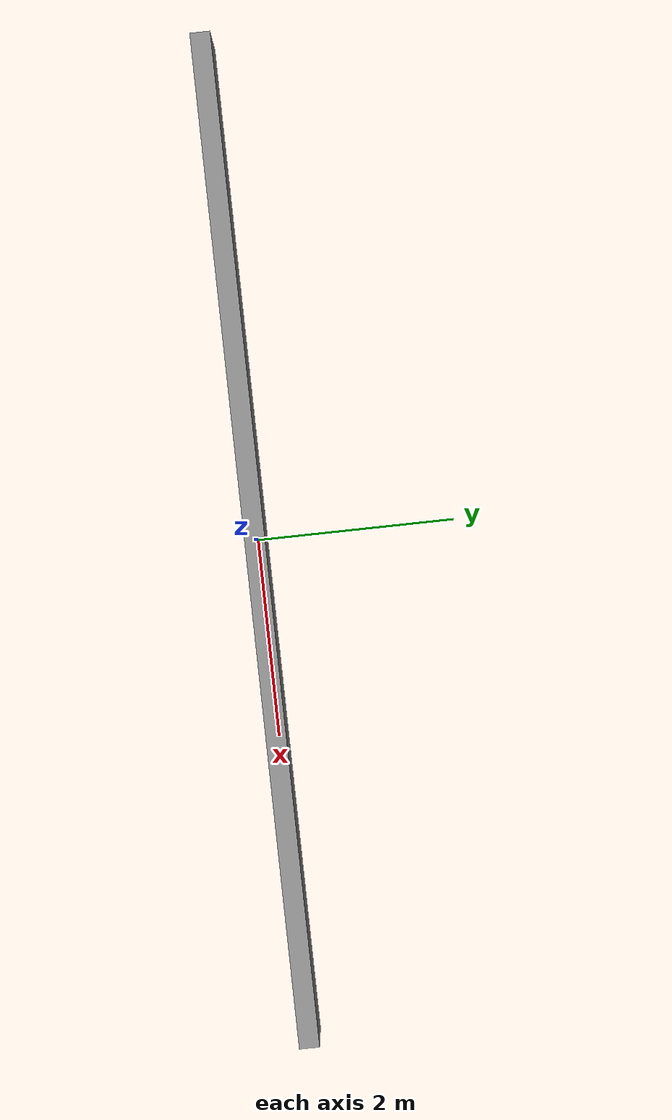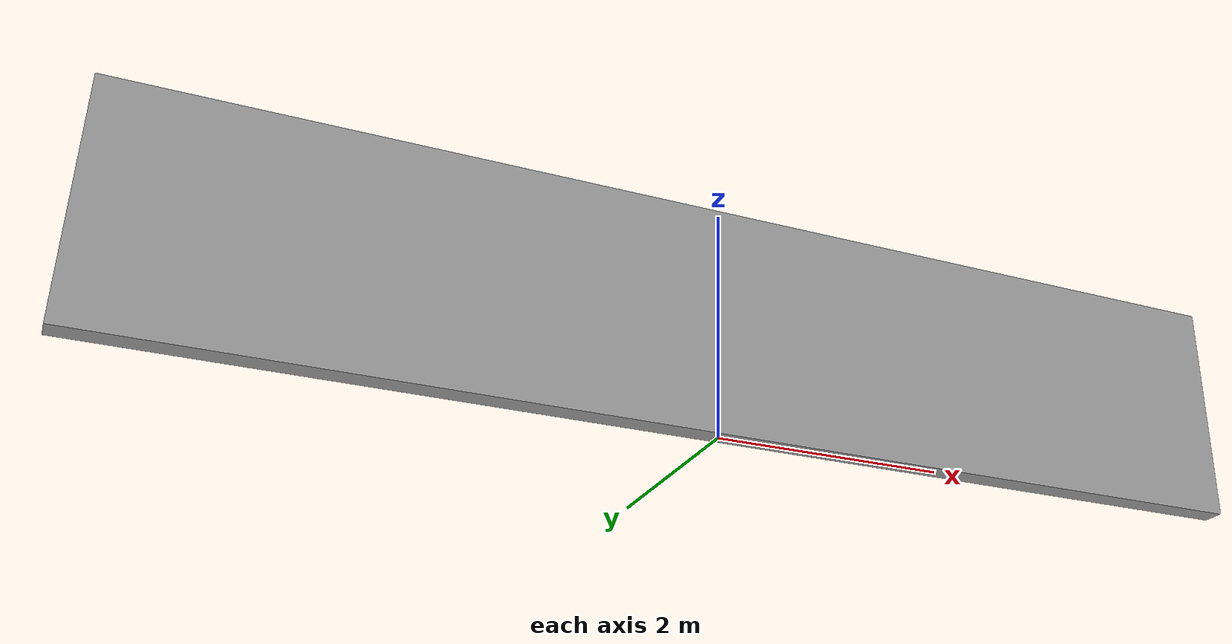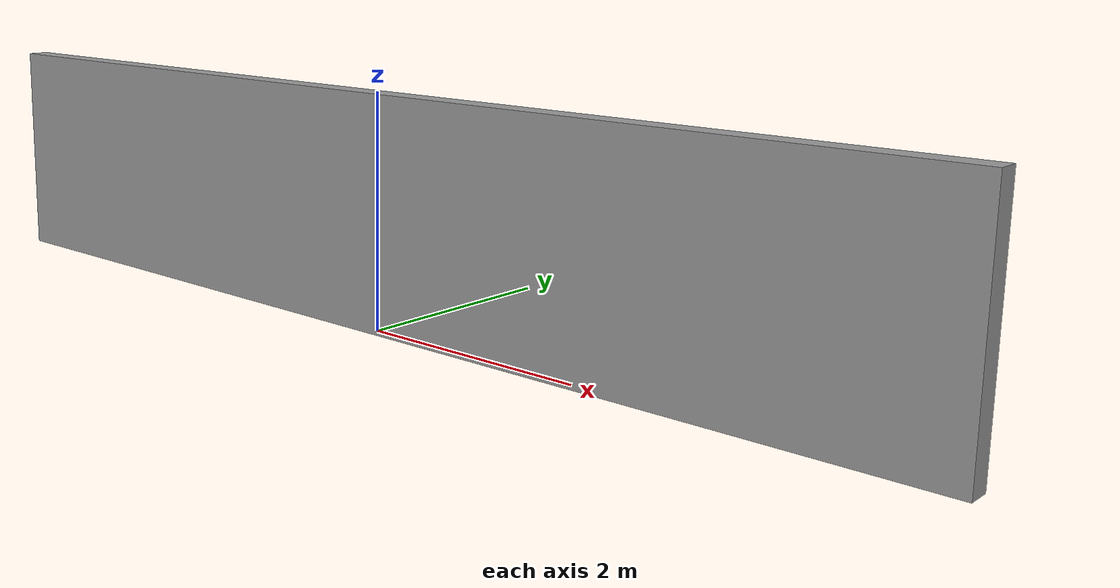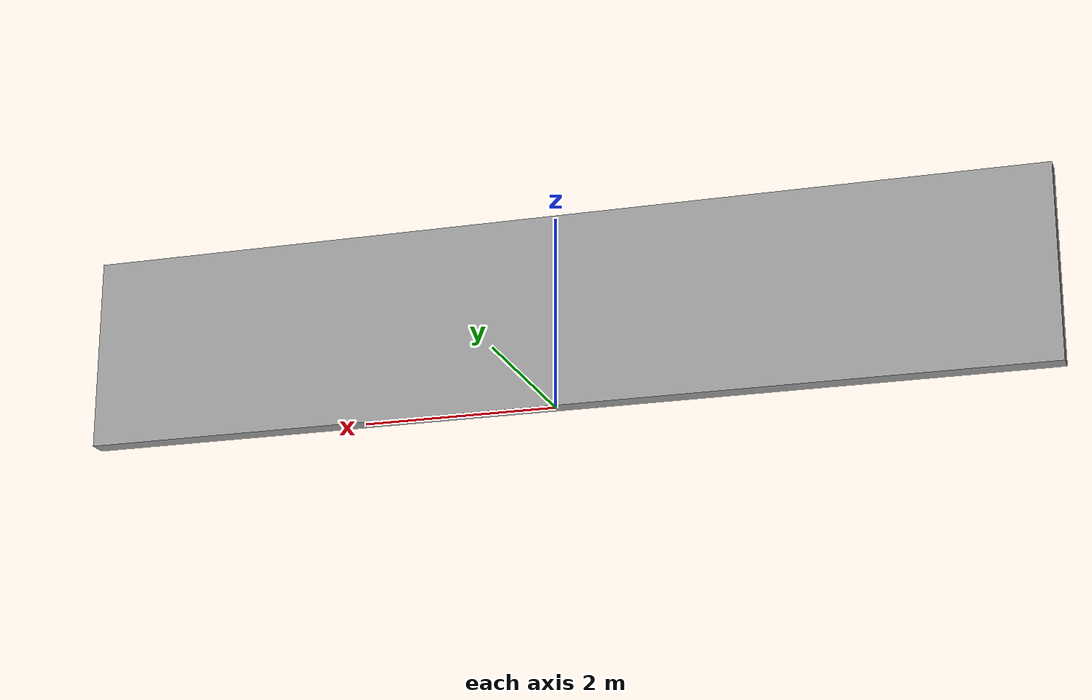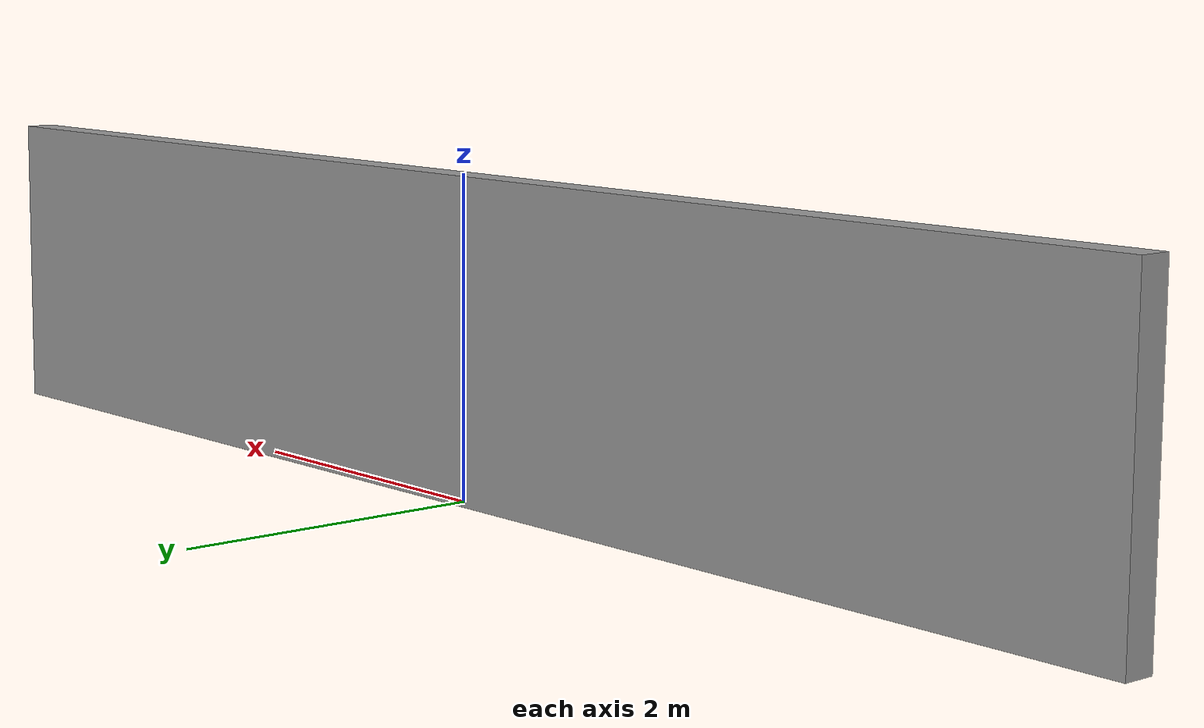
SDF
<?xml version="1.0" ?>
<sdf version="1.5">
  <model name="grey_brick_wall">
    <static>true</static>
    <link name="link">
      <pose>0 0 1.0 0 0 0</pose>
      <collision name="collision">
        <geometry>
          <box>
            <size>10.0 0.2 2.0</size>
          </box>
        </geometry>
      </collision>
      <visual name="visual">
        <cast_shadows>false</cast_shadows>
        <geometry>
          <box>
            <size>10.0 0.2 2.0</size>
          </box>
        </geometry>
        <material>
          <script>
            <uri>model://grey_wall/materials/scripts</uri>
            <uri>model://grey_wall/materials/textures</uri>
            <name>vrc/grey_wall</name>
          </script>
        </material>
      </visual>
    </link>
  </model>
</sdf>
